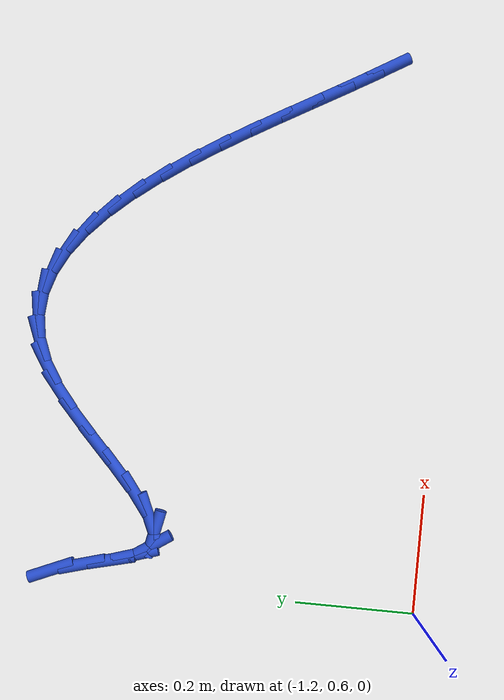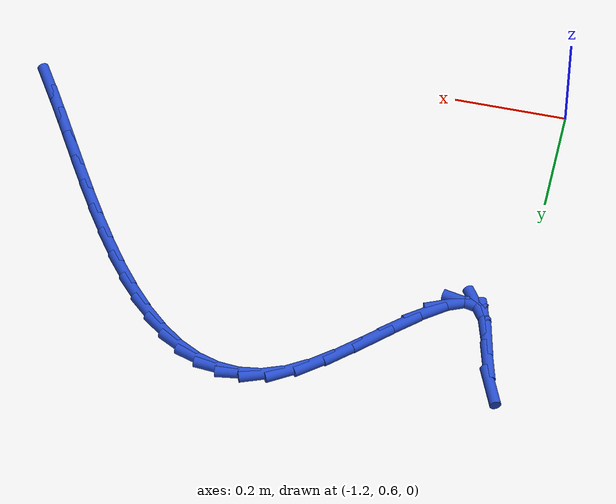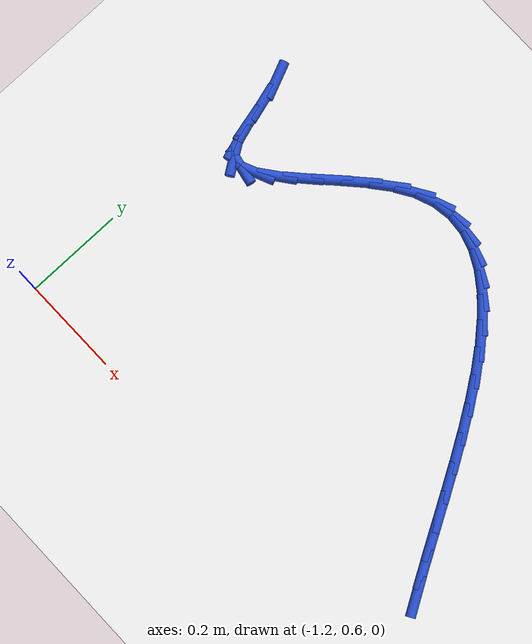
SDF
<sdf version="1.6">
 <world name="default">
  <model name="ground_plane">
   <static>1</static>
   <link name="link">
    <collision name="collision">
     <geometry><plane><normal>0 0 1</normal><size>100 100</size></plane></geometry>
     <surface><friction><ode><mu>100</mu><mu2>50</mu2></ode></friction></surface>
    </collision>
    <visual name="visual">
     <cast_shadows>0</cast_shadows>
     <geometry><plane><normal>0 0 1</normal><size>100 100</size></plane></geometry>
     <material>
      <script><uri>file://media/materials/scripts/gazebo.material</uri><name>Gazebo/WhiteGlow</name></script>
     </material>
    </visual>
   </link>
  </model>
  <model name="line">
   <link name="link_18">
    <pose>-0.2825420407469941 0.7295952902458105 0.01 0 1.57 -1.0316831990888369</pose>
    <collision name="collision">
     <geometry><cylinder><radius>0.01</radius><length>0.08</length></cylinder></geometry>
    </collision>
    <visual name="visual">
     <material>
      <script><name>Gazebo/Blue</name><uri>file://media/materials/scripts/gazebo.material</uri></script>
     </material>
     <geometry><cylinder><radius>0.01</radius><length>0.08</length></cylinder></geometry>
    </visual>
   </link>
   <link name="link_19">
    <pose>-0.3093745821889473 0.7744489052406198 0.01 0 1.57 -1.046342045684514</pose>
    <collision name="collision">
     <geometry><cylinder><radius>0.01</radius><length>0.08</length></cylinder></geometry>
    </collision>
    <visual name="visual">
     <material>
      <script><name>Gazebo/Blue</name><uri>file://media/materials/scripts/gazebo.material</uri></script>
     </material>
     <geometry><cylinder><radius>0.01</radius><length>0.08</length></cylinder></geometry>
    </visual>
   </link>
   <link name="link_20">
    <pose>-0.336689696716729 0.8216667367716824 0.01 0 1.57 -1.052345552330536</pose>
    <collision name="collision">
     <geometry><cylinder><radius>0.01</radius><length>0.08</length></cylinder></geometry>
    </collision>
    <visual name="visual">
     <material>
      <script><name>Gazebo/Blue</name><uri>file://media/materials/scripts/gazebo.material</uri></script>
     </material>
     <geometry><cylinder><radius>0.01</radius><length>0.08</length></cylinder></geometry>
    </visual>
   </link>
   <link name="link_21">
    <pose>-0.3645328248226546 0.8704709585590314 0.01 0 1.57 -1.0501239331744157</pose>
    <collision name="collision">
     <geometry><cylinder><radius>0.01</radius><length>0.08</length></cylinder></geometry>
    </collision>
    <visual name="visual">
     <material>
      <script><name>Gazebo/Blue</name><uri>file://media/materials/scripts/gazebo.material</uri></script>
     </material>
     <geometry><cylinder><radius>0.01</radius><length>0.08</length></cylinder></geometry>
    </visual>
   </link>
   <link name="link_22">
    <pose>-0.39295601850467876 0.9200357785475892 0.01 0 1.57 -1.0400050564200711</pose>
    <collision name="collision">
     <geometry><cylinder><radius>0.01</radius><length>0.08</length></cylinder></geometry>
    </collision>
    <visual name="visual">
     <material>
      <script><name>Gazebo/Blue</name><uri>file://media/materials/scripts/gazebo.material</uri></script>
     </material>
     <geometry><cylinder><radius>0.01</radius><length>0.08</length></cylinder></geometry>
    </visual>
   </link>
   <link name="link_23">
    <pose>-0.42201132976075495 0.9695354046822767 0.01 0 1.57 -1.02173480589715</pose>
    <collision name="collision">
     <geometry><cylinder><radius>0.01</radius><length>0.08</length></cylinder></geometry>
    </collision>
    <visual name="visual">
     <material>
      <script><name>Gazebo/Blue</name><uri>file://media/materials/scripts/gazebo.material</uri></script>
     </material>
     <geometry><cylinder><radius>0.01</radius><length>0.08</length></cylinder></geometry>
    </visual>
   </link>
   <link name="link_24">
    <pose>-0.4517508105888372 1.0181440449080152 0.01 0 1.57 -0.9944811962762646</pose>
    <collision name="collision">
     <geometry><cylinder><radius>0.01</radius><length>0.08</length></cylinder></geometry>
    </collision>
    <visual name="visual">
     <material>
      <script><name>Gazebo/Blue</name><uri>file://media/materials/scripts/gazebo.material</uri></script>
     </material>
     <geometry><cylinder><radius>0.01</radius><length>0.08</length></cylinder></geometry>
    </visual>
   </link>
   <link name="link_25">
    <pose>-0.4822265129868798 1.0650359071697262 0.01 0 1.57 -0.956756802255527</pose>
    <collision name="collision">
     <geometry><cylinder><radius>0.01</radius><length>0.08</length></cylinder></geometry>
    </collision>
    <visual name="visual">
     <material>
      <script><name>Gazebo/Blue</name><uri>file://media/materials/scripts/gazebo.material</uri></script>
     </material>
     <geometry><cylinder><radius>0.01</radius><length>0.08</length></cylinder></geometry>
    </visual>
   </link>
   <link name="link_26">
    <pose>-0.5134904889528366 1.1093851994123316 0.01 0 1.57 -0.9062620205907913</pose>
    <collision name="collision">
     <geometry><cylinder><radius>0.01</radius><length>0.08</length></cylinder></geometry>
    </collision>
    <visual name="visual">
     <material>
      <script><name>Gazebo/Blue</name><uri>file://media/materials/scripts/gazebo.material</uri></script>
     </material>
     <geometry><cylinder><radius>0.01</radius><length>0.08</length></cylinder></geometry>
    </visual>
   </link>
   <link name="link_27">
    <pose>-0.5455947904846612 1.1503661295807512 0.01 0 1.57 -0.8396571108135491</pose>
    <collision name="collision">
     <geometry><cylinder><radius>0.01</radius><length>0.08</length></cylinder></geometry>
    </collision>
    <visual name="visual">
     <material>
      <script><name>Gazebo/Blue</name><uri>file://media/materials/scripts/gazebo.material</uri></script>
     </material>
     <geometry><cylinder><radius>0.01</radius><length>0.08</length></cylinder></geometry>
    </visual>
   </link>
   <link name="link_28">
    <pose>-0.5785914695803083 1.1871529056199086 0.01 0 1.57 -0.7523201853578677</pose>
    <collision name="collision">
     <geometry><cylinder><radius>0.01</radius><length>0.08</length></cylinder></geometry>
    </collision>
    <visual name="visual">
     <material>
      <script><name>Gazebo/Blue</name><uri>file://media/materials/scripts/gazebo.material</uri></script>
     </material>
     <geometry><cylinder><radius>0.01</radius><length>0.08</length></cylinder></geometry>
    </visual>
   </link>
   <link name="link_29">
    <pose>-0.6125325782377311 1.2189197354747232 0.01 0 1.57 -0.6383134153249803</pose>
    <collision name="collision">
     <geometry><cylinder><radius>0.01</radius><length>0.08</length></cylinder></geometry>
    </collision>
    <visual name="visual">
     <material>
      <script><name>Gazebo/Blue</name><uri>file://media/materials/scripts/gazebo.material</uri></script>
     </material>
     <geometry><cylinder><radius>0.01</radius><length>0.08</length></cylinder></geometry>
    </visual>
   </link>
   <link name="link_30">
    <pose>-0.6474701684548845 1.2448408270901177 0.01 0 1.57 -0.4911888678127841</pose>
    <collision name="collision">
     <geometry><cylinder><radius>0.01</radius><length>0.08</length></cylinder></geometry>
    </collision>
    <visual name="visual">
     <material>
      <script><name>Gazebo/Blue</name><uri>file://media/materials/scripts/gazebo.material</uri></script>
     </material>
     <geometry><cylinder><radius>0.01</radius><length>0.08</length></cylinder></geometry>
    </visual>
   </link>
   <link name="link_31">
    <pose>-0.6834562922297214 1.2640903884110122 0.01 0 1.57 -0.30687516031156037</pose>
    <collision name="collision">
     <geometry><cylinder><radius>0.01</radius><length>0.08</length></cylinder></geometry>
    </collision>
    <visual name="visual">
     <material>
      <script><name>Gazebo/Blue</name><uri>file://media/materials/scripts/gazebo.material</uri></script>
     </material>
     <geometry><cylinder><radius>0.01</radius><length>0.08</length></cylinder></geometry>
    </visual>
   </link>
   <link name="link_32">
    <pose>-0.7205430015601966 1.2758426273823291 0.01 0 1.57 -0.08943606505969601</pose>
    <collision name="collision">
     <geometry><cylinder><radius>0.01</radius><length>0.08</length></cylinder></geometry>
    </collision>
    <visual name="visual">
     <material>
      <script><name>Gazebo/Blue</name><uri>file://media/materials/scripts/gazebo.material</uri></script>
     </material>
     <geometry><cylinder><radius>0.01</radius><length>0.08</length></cylinder></geometry>
    </visual>
   </link>
   <link name="link_33">
    <pose>-0.7587823484442638 1.2792717519489896 0.01 0 1.57 0.14400626964484264</pose>
    <collision name="collision">
     <geometry><cylinder><radius>0.01</radius><length>0.08</length></cylinder></geometry>
    </collision>
    <visual name="visual">
     <material>
      <script><name>Gazebo/Blue</name><uri>file://media/materials/scripts/gazebo.material</uri></script>
     </material>
     <geometry><cylinder><radius>0.01</radius><length>0.08</length></cylinder></geometry>
    </visual>
   </link>
   <link name="link_34">
    <pose>-0.7982263848798768 1.2735519700559146 0.01 0 1.57 0.36803685280434095</pose>
    <collision name="collision">
     <geometry><cylinder><radius>0.01</radius><length>0.08</length></cylinder></geometry>
    </collision>
    <visual name="visual">
     <material>
      <script><name>Gazebo/Blue</name><uri>file://media/materials/scripts/gazebo.material</uri></script>
     </material>
     <geometry><cylinder><radius>0.01</radius><length>0.08</length></cylinder></geometry>
    </visual>
   </link>
   <link name="link_35">
    <pose>-0.8389271628649898 1.2578574896480257 0.01 0 1.57 0.5590238708364674</pose>
    <collision name="collision">
     <geometry><cylinder><radius>0.01</radius><length>0.08</length></cylinder></geometry>
    </collision>
    <visual name="visual">
     <material>
      <script><name>Gazebo/Blue</name><uri>file://media/materials/scripts/gazebo.material</uri></script>
     </material>
     <geometry><cylinder><radius>0.01</radius><length>0.08</length></cylinder></geometry>
    </visual>
   </link>
   <link name="link_36">
    <pose>-0.8808785465923011 1.2316131002517736 0.01 0 1.57 0.6812065364617392</pose>
    <collision name="collision">
     <geometry><cylinder><radius>0.01</radius><length>0.08</length></cylinder></geometry>
    </collision>
    <visual name="visual">
     <material>
      <script><name>Gazebo/Blue</name><uri>file://media/materials/scripts/gazebo.material</uri></script>
     </material>
     <geometry><cylinder><radius>0.01</radius><length>0.08</length></cylinder></geometry>
    </visual>
   </link>
   <link name="link_37">
    <pose>-0.9234014703211174 1.197141515558739 0.01 0 1.57 0.7423256621221415</pose>
    <collision name="collision">
     <geometry><cylinder><radius>0.01</radius><length>0.08</length></cylinder></geometry>
    </collision>
    <visual name="visual">
     <material>
      <script><name>Gazebo/Blue</name><uri>file://media/materials/scripts/gazebo.material</uri></script>
     </material>
     <geometry><cylinder><radius>0.01</radius><length>0.08</length></cylinder></geometry>
    </visual>
   </link>
   <link name="link_38">
    <pose>-0.9653843777014977 1.1586279388386032 0.01 0 1.57 0.7601751829311802</pose>
    <collision name="collision">
     <geometry><cylinder><radius>0.01</radius><length>0.08</length></cylinder></geometry>
    </collision>
    <visual name="visual">
     <material>
      <script><name>Gazebo/Blue</name><uri>file://media/materials/scripts/gazebo.material</uri></script>
     </material>
     <geometry><cylinder><radius>0.01</radius><length>0.08</length></cylinder></geometry>
    </visual>
   </link>
   <link name="link_39">
    <pose>-1.0057085783200055 1.1202882956903337 0.01 0 1.57 0.7351301806686831</pose>
    <collision name="collision">
     <geometry><cylinder><radius>0.01</radius><length>0.08</length></cylinder></geometry>
    </collision>
    <visual name="visual">
     <material>
      <script><name>Gazebo/Blue</name><uri>file://media/materials/scripts/gazebo.material</uri></script>
     </material>
     <geometry><cylinder><radius>0.01</radius><length>0.08</length></cylinder></geometry>
    </visual>
   </link>
   <link name="link_40">
    <pose>-1.043255381763203 1.0863385117128987 0.01 0 1.57 0.6455133526023412</pose>
    <collision name="collision">
     <geometry><cylinder><radius>0.01</radius><length>0.08</length></cylinder></geometry>
    </collision>
    <visual name="visual">
     <material>
      <script><name>Gazebo/Blue</name><uri>file://media/materials/scripts/gazebo.material</uri></script>
     </material>
     <geometry><cylinder><radius>0.01</radius><length>0.08</length></cylinder></geometry>
    </visual>
   </link>
   <link name="link_41">
    <pose>-1.0769060976176543 1.0609945125052669 0.01 0 1.57 0.4122364984934526</pose>
    <collision name="collision">
     <geometry><cylinder><radius>0.01</radius><length>0.08</length></cylinder></geometry>
    </collision>
    <visual name="visual">
     <material>
      <script><name>Gazebo/Blue</name><uri>file://media/materials/scripts/gazebo.material</uri></script>
     </material>
     <geometry><cylinder><radius>0.01</radius><length>0.08</length></cylinder></geometry>
    </visual>
   </link>
   <link name="link_42">
    <pose>-1.1055420354699221 1.0484722236664064 0.01 0 1.57 -0.1980250252172087</pose>
    <collision name="collision">
     <geometry><cylinder><radius>0.01</radius><length>0.08</length></cylinder></geometry>
    </collision>
    <visual name="visual">
     <material>
      <script><name>Gazebo/Blue</name><uri>file://media/materials/scripts/gazebo.material</uri></script>
     </material>
     <geometry><cylinder><radius>0.01</radius><length>0.08</length></cylinder></geometry>
    </visual>
   </link>
   <link name="link_43">
    <pose>-1.1280445529842147 1.0529874601636637 0.01 0 1.57 -0.9780239369295793</pose>
    <collision name="collision">
     <geometry><cylinder><radius>0.01</radius><length>0.08</length></cylinder></geometry>
    </collision>
    <visual name="visual">
     <material>
      <script><name>Gazebo/Blue</name><uri>file://media/materials/scripts/gazebo.material</uri></script>
     </material>
     <geometry><cylinder><radius>0.01</radius><length>0.08</length></cylinder></geometry>
    </visual>
   </link>
   <link name="link_44">
    <pose>-1.1441211739523374 1.0768549434993822 0.01 0 1.57 -1.2640708413131694</pose>
    <collision name="collision">
     <geometry><cylinder><radius>0.01</radius><length>0.08</length></cylinder></geometry>
    </collision>
    <visual name="visual">
     <material>
      <script><name>Gazebo/Blue</name><uri>file://media/materials/scripts/gazebo.material</uri></script>
     </material>
     <geometry><cylinder><radius>0.01</radius><length>0.08</length></cylinder></geometry>
    </visual>
   </link>
   <link name="link_45">
    <pose>-1.1564082960580762 1.1156497542854311 0.01 0 1.57 -1.3291346633051313</pose>
    <collision name="collision">
     <geometry><cylinder><radius>0.01</radius><length>0.08</length></cylinder></geometry>
    </collision>
    <visual name="visual">
     <material>
      <script><name>Gazebo/Blue</name><uri>file://media/materials/scripts/gazebo.material</uri></script>
     </material>
     <geometry><cylinder><radius>0.01</radius><length>0.08</length></cylinder></geometry>
    </visual>
   </link>
   <link name="link_46">
    <pose>-1.1681910574448797 1.1634541544291297 0.01 0 1.57 -1.292101575617849</pose>
    <collision name="collision">
     <geometry><cylinder><radius>0.01</radius><length>0.08</length></cylinder></geometry>
    </collision>
    <visual name="visual">
     <material>
      <script><name>Gazebo/Blue</name><uri>file://media/materials/scripts/gazebo.material</uri></script>
     </material>
     <geometry><cylinder><radius>0.01</radius><length>0.08</length></cylinder></geometry>
    </visual>
   </link>
   <link name="link_47">
    <pose>-1.1827545962561936 1.2143504058377932 0.01 0 1.57 -1.1654148411064849</pose>
    <collision name="collision">
     <geometry><cylinder><radius>0.01</radius><length>0.08</length></cylinder></geometry>
    </collision>
    <visual name="visual">
     <material>
      <script><name>Gazebo/Blue</name><uri>file://media/materials/scripts/gazebo.material</uri></script>
     </material>
     <geometry><cylinder><radius>0.01</radius><length>0.08</length></cylinder></geometry>
    </visual>
   </link>
  </model>
 </world>
</sdf>
